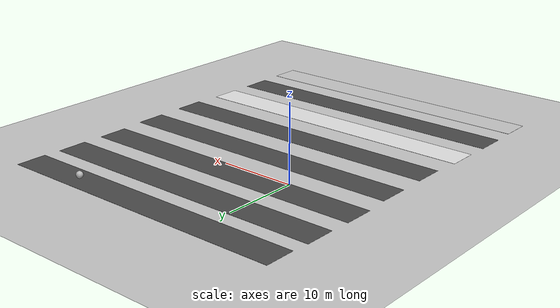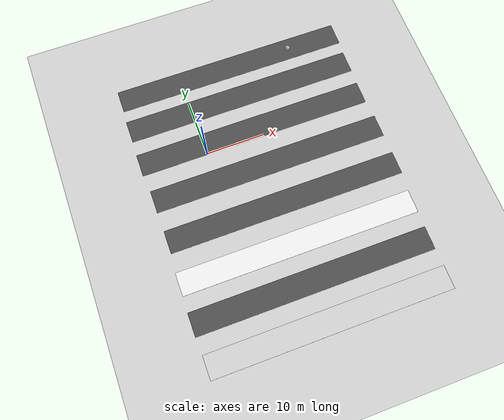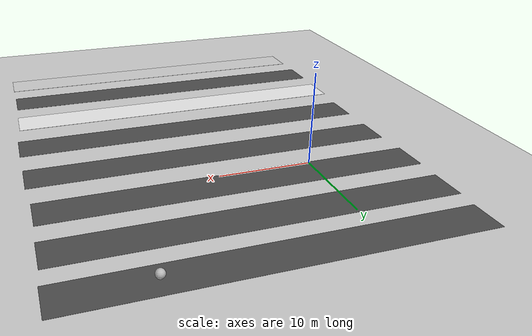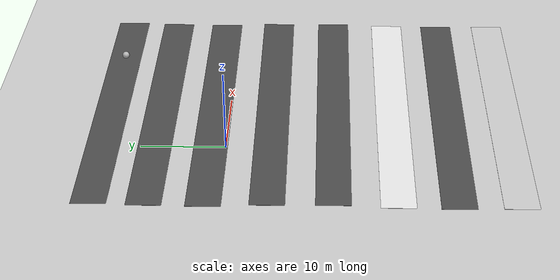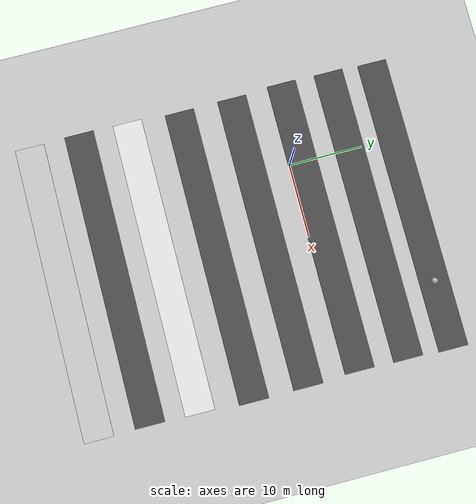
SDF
<sdf version="1.6">
 <world name="default">
  <light name="sun" type="directional">
   <pose>0 0 10 0 -0 0</pose>
   <diffuse>0.8 0.8 0.8 1</diffuse>
   <specular>0.2 0.2 0.2 1</specular>
   <attenuation>
    <range>1000</range>
    <constant>0.9</constant>
    <linear>0.01</linear>
    <quadratic>0.001</quadratic>
   </attenuation>
   <direction>-0.5 0.1 -0.9</direction>
  </light>
  <model name="ground_plane">
   <static>1</static>
   <link name="link">
    <collision name="collision">
     <geometry><plane><normal>0 0 1</normal><size>100 100</size></plane></geometry>
     <surface>
      <contact><collide_bitmask>65535</collide_bitmask></contact>
      <friction><ode><mu>100</mu><mu2>50</mu2></ode></friction>
     </surface>
    </collision>
    <visual name="visual">
     <cast_shadows>0</cast_shadows>
     <geometry><plane><normal>0 0 1</normal><size>100 100</size></plane></geometry>
     <material>
      <script><uri>file://media/materials/scripts/gazebo.material</uri><name>Gazebo/Grey</name></script>
     </material>
    </visual>
   </link>
  </model>
  <gravity>0 0 -9.8</gravity>
  <magnetic_field>6e-06 2.3e-05 -4.2e-05</magnetic_field>
  <atmosphere type="adiabatic"/>
  <physics name="default_physics" default="0" type="ode">
   <max_step_size>0.001</max_step_size>
   <real_time_factor>1</real_time_factor>
   <real_time_update_rate>1000</real_time_update_rate>
  </physics>
  <scene><ambient>0.4 0.4 0.4 1</ambient><background>0.7 0.7 0.7 1</background><shadows>1</shadows></scene>
  <spherical_coordinates>
   <surface_model>EARTH_WGS84</surface_model>
   <latitude_deg>0</latitude_deg>
   <longitude_deg>0</longitude_deg>
   <elevation>0</elevation>
   <heading_deg>0</heading_deg>
  </spherical_coordinates>
  <model name="road_dashed_two_white">
   <static>1</static>
   <link name="link">
    <collision name="collision"><geometry><box><size>40 4 0.02</size></box></geometry></collision>
    <visual name="visual">
     <cast_shadows>0</cast_shadows>
     <geometry><box><size>40 4 0.02</size></box></geometry>
     <material>
      <script>
       <uri>model://road_dashed_two_white/materials/scripts</uri>
       <uri>model://road_dashed_two_white/materials/textures</uri>
       <name>DashedTwoWhite</name>
      </script>
     </material>
    </visual>
   </link>
   <pose>8.78675 -19.7738 0 0 -0 0</pose>
  </model>
  <model name="road_plain_white">
   <static>1</static>
   <link name="link">
    <collision name="collision"><geometry><box><size>40 4 0.02</size></box></geometry></collision>
    <visual name="visual">
     <cast_shadows>0</cast_shadows>
     <geometry><box><size>40 4 0.02</size></box></geometry>
     <material>
      <ambient>0.8 0.8 0.8 1</ambient>
      <diffuse>0.8 0.8 0.8 1</diffuse>
      <specular>0.1 0.1 0.1 1</specular>
      <emissive>0 0 0 0</emissive>
     </material>
    </visual>
   </link>
   <pose>8.80664 -33.3193 0 0 -0 0</pose>
  </model>
  <model name="dirt_road">
   <static>1</static>
   <link name="link">
    <collision name="collision"><geometry><box><size>40 4 0.02</size></box></geometry></collision>
    <visual name="visual">
     <cast_shadows>0</cast_shadows>
     <geometry><box><size>40 4 0.02</size></box></geometry>
     <material>
      <script>
       <uri>model://two_stripe_road/materials/scripts</uri>
       <uri>model://two_stripe_road/materials/textures</uri>
       <name>TwoStripeRoad</name>
      </script>
     </material>
    </visual>
   </link>
   <pose>8.68385 -26.45 0 0 -0 0</pose>
  </model>
  <model name="road_light_gravel">
   <static>1</static>
   <link name="link">
    <collision name="collision"><geometry><box><size>40 4 0.02</size></box></geometry></collision>
    <visual name="visual">
     <cast_shadows>0</cast_shadows>
     <geometry><box><size>40 4 0.02</size></box></geometry>
     <material>
      <script>
       <uri>model://road_light_gravel/materials/scripts</uri>
       <uri>model://road_light_gravel/materials/textures</uri>
       <name>RoadLightGravel</name>
      </script>
     </material>
    </visual>
   </link>
   <pose>8.76577 1.8144 0 0 -0 0</pose>
  </model>
  <model name="road_light_grid">
   <static>1</static>
   <link name="link">
    <collision name="collision"><geometry><box><size>40 4 0.02</size></box></geometry></collision>
    <visual name="visual">
     <cast_shadows>0</cast_shadows>
     <geometry><box><size>40 4 0.02</size></box></geometry>
     <material>
      <script>
       <uri>model://road_light_grid/materials/scripts</uri>
       <uri>model://road_light_grid/materials/textures</uri>
       <name>RoadLightGrid</name>
      </script>
     </material>
    </visual>
   </link>
   <pose>9.15052 -12.5821 0 0 -0 0</pose>
  </model>
  <model name="road_light_tile">
   <static>1</static>
   <link name="link">
    <collision name="collision"><geometry><box><size>40 4 0.02</size></box></geometry></collision>
    <visual name="visual">
     <cast_shadows>0</cast_shadows>
     <geometry><box><size>40 4 0.02</size></box></geometry>
     <material>
      <script>
       <uri>model://road_light_tile/materials/scripts</uri>
       <uri>model://road_light_tile/materials/textures</uri>
       <name>RoadLightTile</name>
      </script>
     </material>
    </visual>
   </link>
   <pose>9.08345 -5.23555 0 0 -0 0</pose>
  </model>
  <model name="road_aged_tile">
   <static>1</static>
   <link name="link">
    <collision name="collision"><geometry><box><size>40 4 0.02</size></box></geometry></collision>
    <visual name="visual">
     <cast_shadows>0</cast_shadows>
     <geometry><box><size>40 4 0.02</size></box></geometry>
     <material>
      <script>
       <uri>model://road_aged_tile/materials/scripts</uri>
       <uri>model://road_aged_tile/materials/textures</uri>
       <name>RoadAgedTile</name>
      </script>
     </material>
    </visual>
   </link>
   <pose>8.87876 8.3934 0 0 -0 0</pose>
  </model>
  <model name="road_illusion_slab">
   <static>1</static>
   <link name="link">
    <collision name="collision"><geometry><box><size>40 4 0.02</size></box></geometry></collision>
    <visual name="visual">
     <cast_shadows>0</cast_shadows>
     <geometry><box><size>40 4 0.02</size></box></geometry>
     <material>
      <script>
       <uri>model://road_illusion_slab/materials/scripts</uri>
       <uri>model://road_illusion_slab/materials/textures</uri>
       <name>IllusionSlabRoad</name>
      </script>
     </material>
    </visual>
   </link>
   <pose>9.08108 14.5058 0 0 -0 0</pose>
  </model>
  <model name="unit_box">
   <pose>19.8829 14.4434 0.51 0 -0 3e-06</pose>
   <link name="link">
    <inertial>
     <mass>1</mass>
     <inertia>
      <ixx>0.166667</ixx>
      <ixy>0</ixy>
      <ixz>0</ixz>
      <iyy>0.166667</iyy>
      <iyz>0</iyz>
      <izz>0.166667</izz>
     </inertia>
    </inertial>
    <collision name="collision"><geometry><box><size>0.5 0.5 0.5</size></box></geometry></collision>
    <visual name="visual">
     <geometry><box><size>0.5 0.5 0.5</size></box></geometry>
     <material>
      <script><name>Gazebo/Grey</name><uri>file://media/materials/scripts/gazebo.material</uri></script>
     </material>
    </visual>
    <visual name="visual_sphere_cue">
     <geometry><sphere><radius>0.45</radius></sphere></geometry>
     <plugin name="blink" filename="libBlinkVisualPlugin.so">
      <color_a>0 1 0 0.15</color_a>
      <color_b>0 1 0 0.15</color_b>
      <period>2</period>
      <use_wall_time>true</use_wall_time>
     </plugin>
     <material>
      <script><uri>file://media/materials/scripts/gazebo.material</uri><name>__default__</name></script>
     </material>
    </visual>
   </link>
  </model>
 </world>
</sdf>
